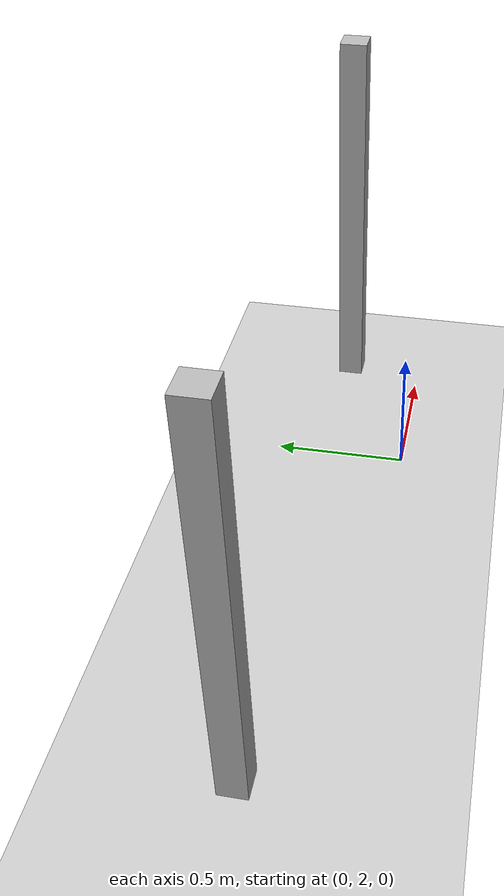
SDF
<?xml version="1.0" ?>
<sdf version="1.4">
  <world name="default">
    <include>
      <uri>model://ground_plane</uri>
    </include>
    <include>
      <uri>model://sun</uri>
    </include>
    <include>
      <uri>model://asphalt_plane</uri>
    </include>

    <physics type='ode'>
      <max_step_size>0.01</max_step_size>
      <real_time_factor>1</real_time_factor>
      <real_time_update_rate>100</real_time_update_rate>
      <gravity>0 0 -9.8</gravity>
    </physics>

    <model name="obstacle1">
      <static>true</static>
      <pose>0.6 2.3 0.75 0 0 0</pose>
      <link name="box">
        <collision name="collision">
          <geometry>
            <box>
              <size>0.1 0.1 1.5</size>
            </box>
          </geometry>
        </collision>
        <visual name="visual">
          <geometry>
            <box>
              <size>0.1 0.1 1.5</size>
            </box>
          </geometry>
        </visual>
      </link>
    </model>

    <model name="obstacle2">
      <static>true</static>
      <pose>-1.5 2.3 0.75 0 0 0</pose>
      <link name="box">
        <collision name="collision">
          <geometry>
            <box>
              <size>0.1 0.1 1.5</size>
            </box>
          </geometry>
        </collision>
        <visual name="visual">
          <geometry>
            <box>
              <size>0.1 0.1 1.5</size>
            </box>
          </geometry>
        </visual>
      </link>
    </model>

  </world>
</sdf>
